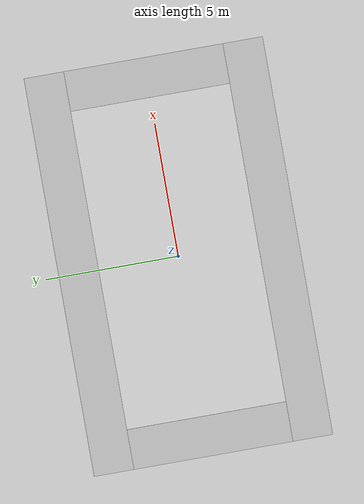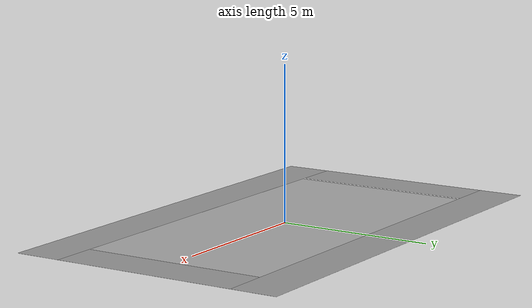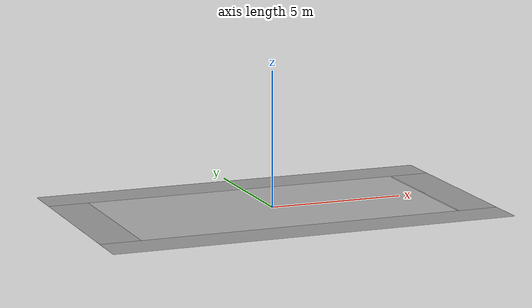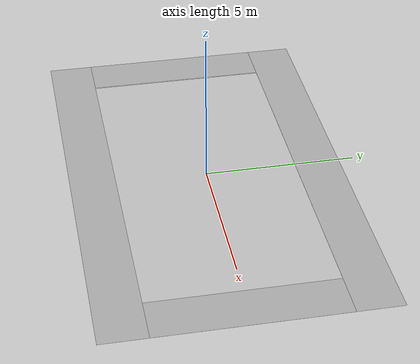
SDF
<?xml version="1.0" ?>
<sdf version="1.4">
  <model name="RoboCup15_MSL_Field">
    <static>true</static>

    <link name="chassis">
      <pose>0 0 0.01 0 0 0</pose>
      <collision name="collision">
        <geometry>
          <plane>
            <normal>0 0 1</normal>
            <size>12 8</size>
          </plane>
        </geometry>
        <surface>
          <friction>
            <ode>
              <mu>50</mu>
              <mu2>25</mu2>
            </ode>
          </friction>
        </surface>
      </collision>

      <visual name="carpet">
        <cast_shadows>false</cast_shadows>
        <geometry>
          <plane>
            <normal>0 0 1</normal>
            <size>12 8</size>
          </plane>
        </geometry>
        <material>
          <script>
            <uri>file:///home/kimbring2/catkin_ws/src/jetbot/jetbot_gazebo/materials/scripts/</uri>
            <uri>file:///home/kimbring2/catkin_ws/src/jetbot/jetbot_gazebo/materials/textures/</uri>
            <name>RoboCup/Carpet</name>
          </script>
        </material>
      </visual>

       <visual name="base1">
        <pose>0 3.75 0.01 0 0 0</pose>
        <cast_shadows>false</cast_shadows>
        <geometry>
          <plane>
            <normal>0 0 1</normal>
            <size>15.0 1.5</size>
          </plane>
        </geometry>
        <material>
          <script>
            <uri>file:///home/kimbring2/catkin_ws/src/jetbot/jetbot_gazebo/materials/scripts/</uri>
            <uri>file:///home/kimbring2/catkin_ws/src/jetbot/jetbot_gazebo/materials/textures/</uri>
            <name>RoboCup/FieldBorder</name>
          </script>
        </material>
      </visual>
      <visual name="base2">
        <pose>0 -3.75 0.01 0 0 0</pose>
        <cast_shadows>false</cast_shadows>
        <geometry>
          <plane>
            <normal>0 0 1</normal>
            <size>15.0 1.5</size>
          </plane>
        </geometry>
        <material>
          <script>
            <uri>file:///home/kimbring2/catkin_ws/src/jetbot/jetbot_gazebo/materials/scripts/</uri>
            <uri>file:///home/kimbring2/catkin_ws/src/jetbot/jetbot_gazebo/materials/textures/</uri>
            <name>RoboCup/FieldBorder</name>
          </script>
        </material>
      </visual>
      <visual name="base3">
        <pose>6.75 0 0.01 0 0 0</pose>
        <cast_shadows>false</cast_shadows>
        <geometry>
          <plane>
            <normal>0 0 1</normal>
            <size>1.5 6.0</size>
          </plane>
        </geometry>
        <material>
          <script>
            <uri>file:///home/kimbring2/catkin_ws/src/jetbot/jetbot_gazebo/materials/scripts/</uri>
            <uri>file:///home/kimbring2/catkin_ws/src/jetbot/jetbot_gazebo/materials/textures/</uri>
            <name>RoboCup/FieldBorder</name>
          </script>
        </material>
      </visual>
      <visual name="base4">
        <pose>-6.75 0 0.01 0 0 0</pose>
        <cast_shadows>false</cast_shadows>
        <geometry>
          <plane>
            <normal>0 0 1</normal>
            <size>1.5 6.0</size>
          </plane>
        </geometry>
        <material>
          <script>
            <uri>file:///home/kimbring2/catkin_ws/src/jetbot/jetbot_gazebo/materials/scripts/</uri>
            <uri>file:///home/kimbring2/catkin_ws/src/jetbot/jetbot_gazebo/materials/textures/</uri>
            <name>RoboCup/FieldBorder</name>
          </script>
        </material>
      </visual>
    </link>

  </model>
</sdf>
